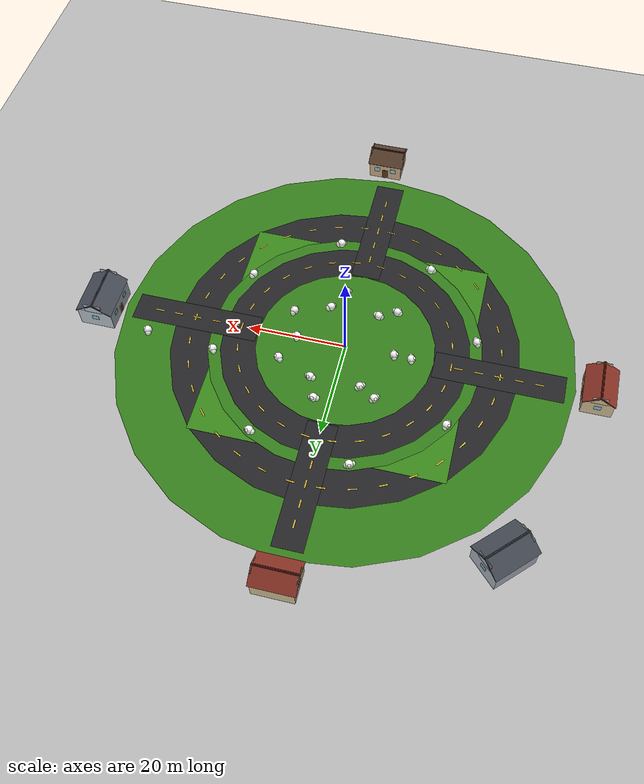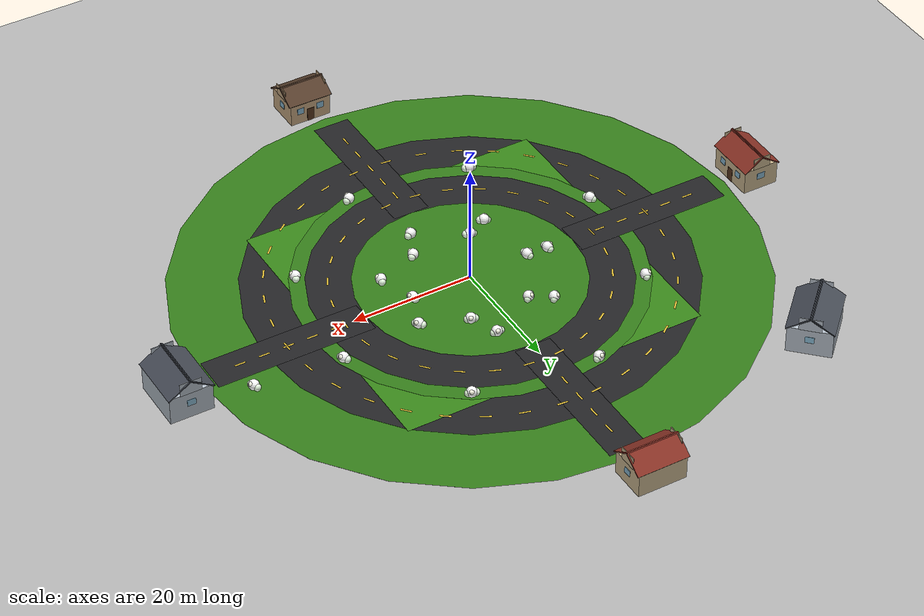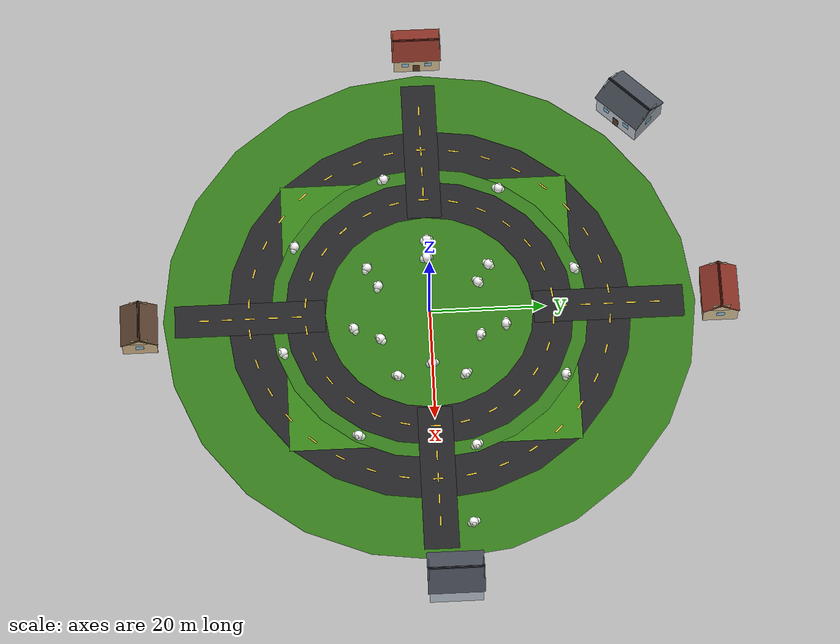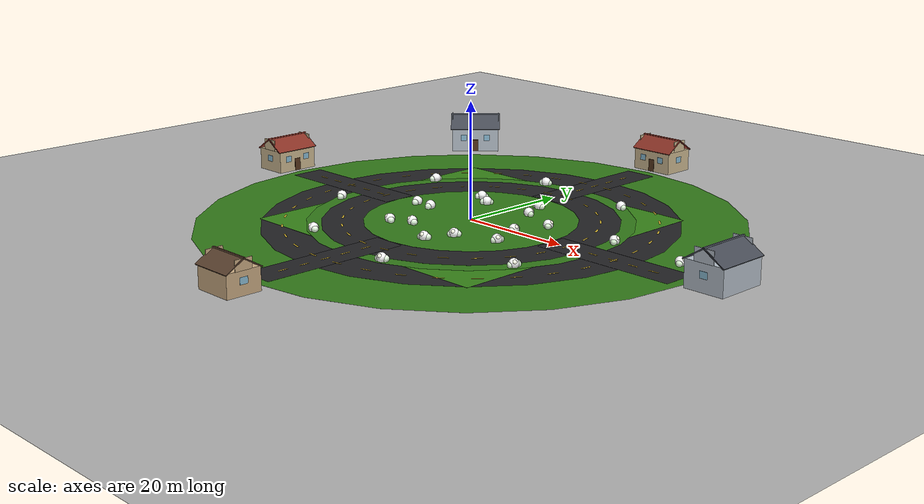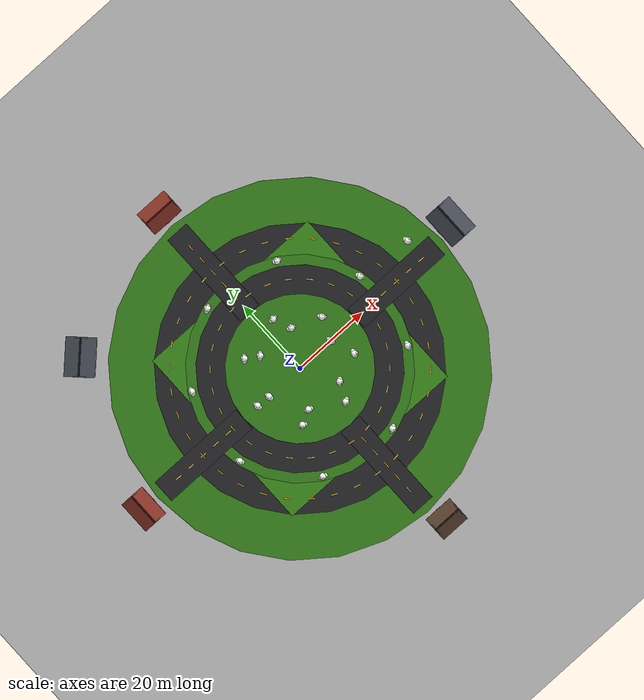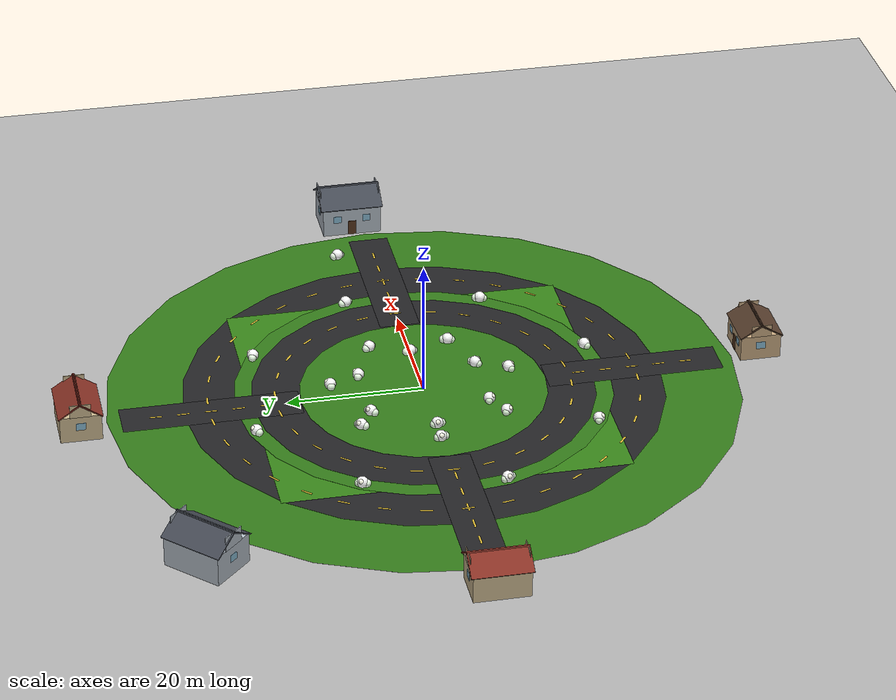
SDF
<sdf version="1.9">
 <world name="vtol_world">
  <physics name="1ms" type="ignore">
   <max_step_size>0.001</max_step_size>
   <real_time_factor>1.0</real_time_factor>
  </physics>
  <plugin filename="gz-sim-physics-system" name="gz::sim::systems::Physics"/>
  <plugin filename="gz-sim-user-commands-system" name="gz::sim::systems::UserCommands"/>
  <plugin filename="gz-sim-scene-broadcaster-system" name="gz::sim::systems::SceneBroadcaster"/>
  <plugin filename="gz-sim-sensors-system" name="gz::sim::systems::Sensors">
   <render_engine>ogre2</render_engine>
  </plugin>
  <scene><ambient>0.6 0.6 0.6 1</ambient><background>0.75 0.82 0.9 1</background><shadows>true</shadows></scene>
  <light name="sun" type="directional">
   <pose>0 0 10 0 0 0</pose>
   <diffuse>0.9 0.9 0.9 1</diffuse>
   <specular>0.2 0.2 0.2 1</specular>
   <direction>-0.5 0.1 -0.9</direction>
  </light>
  <light name="fill" type="directional">
   <cast_shadows>false</cast_shadows>
   <pose>0 0 10 0 0 0</pose>
   <diffuse>0.45 0.45 0.45 1</diffuse>
   <specular>0.05 0.05 0.05 1</specular>
   <direction>0.6 -0.2 -0.6</direction>
  </light>
  <model name="ground_plane">
   <static>true</static>
   <link name="link">
    <collision name="collision">
     <geometry><plane><normal>0 0 1</normal><size>200 200</size></plane></geometry>
    </collision>
    <visual name="visual">
     <geometry><plane><normal>0 0 1</normal><size>200 200</size></plane></geometry>
     <material>
      <ambient>0.7 0.7 0.7 1</ambient>
      <diffuse>0.7 0.7 0.7 1</diffuse>
      <specular>0.4 0.4 0.4 1</specular>
     </material>
    </visual>
   </link>
  </model>
  <model name="grass">
   <static>true</static>
   <link name="link">
    <visual name="visual">
     <pose>0 0 0.002 0 0 0</pose>
     <geometry><plane><normal>0 0 1</normal><size>50 50</size></plane></geometry>
     <material>
      <ambient>0.18 0.42 0.08 1</ambient>
      <diffuse>0.22 0.52 0.10 1</diffuse>
      <specular>0.05 0.12 0.03 1</specular>
     </material>
    </visual>
   </link>
  </model>
  <model name="road_network">
   <static>true</static>
   <link name="link">
    <visual name="grass_base">
     <pose>0 0 0.01 0 0 0</pose>
     <geometry><cylinder><radius>46.0</radius><length>0.002</length></cylinder></geometry>
     <material>
      <ambient>0.2 0.48 0.1 1</ambient>
      <diffuse>0.2 0.48 0.1 1</diffuse>
      <specular>0.05 0.05 0.05 1</specular>
     </material>
    </visual>
    <visual name="outer_asphalt">
     <pose>0 0 0.02 0 0 0</pose>
     <geometry><cylinder><radius>35.0</radius><length>0.002</length></cylinder></geometry>
     <material>
      <ambient>0.14 0.14 0.15 1</ambient>
      <diffuse>0.14 0.14 0.15 1</diffuse>
      <specular>0.05 0.05 0.05 1</specular>
     </material>
    </visual>
    <visual name="median_grass">
     <pose>0 0 0.03 0 0 0</pose>
     <geometry><cylinder><radius>27.5</radius><length>0.002</length></cylinder></geometry>
     <material>
      <ambient>0.2 0.48 0.1 1</ambient>
      <diffuse>0.2 0.48 0.1 1</diffuse>
      <specular>0.05 0.05 0.05 1</specular>
     </material>
    </visual>
    <visual name="inner_asphalt">
     <pose>0 0 0.04 0 0 0</pose>
     <geometry><cylinder><radius>25.0</radius><length>0.002</length></cylinder></geometry>
     <material>
      <ambient>0.14 0.14 0.15 1</ambient>
      <diffuse>0.14 0.14 0.15 1</diffuse>
      <specular>0.05 0.05 0.05 1</specular>
     </material>
    </visual>
    <visual name="center_grass">
     <pose>0 0 0.05 0 0 0</pose>
     <geometry><cylinder><radius>18.0</radius><length>0.002</length></cylinder></geometry>
     <material>
      <ambient>0.2 0.48 0.1 1</ambient>
      <diffuse>0.2 0.48 0.1 1</diffuse>
      <specular>0.05 0.05 0.05 1</specular>
     </material>
    </visual>
    <visual name="radial_e">
     <pose>31.000 0.000 0.055 0 0 0.0000</pose>
     <geometry><plane><normal>0 0 1</normal><size>26.0 6.0</size></plane></geometry>
     <material>
      <ambient>0.14 0.14 0.15 1</ambient>
      <diffuse>0.14 0.14 0.15 1</diffuse>
      <specular>0.05 0.05 0.05 1</specular>
     </material>
    </visual>
    <visual name="radial_n">
     <pose>0.000 31.000 0.055 0 0 0.0000</pose>
     <geometry><plane><normal>0 0 1</normal><size>6.0 26.0</size></plane></geometry>
     <material>
      <ambient>0.14 0.14 0.15 1</ambient>
      <diffuse>0.14 0.14 0.15 1</diffuse>
      <specular>0.05 0.05 0.05 1</specular>
     </material>
    </visual>
    <visual name="radial_w">
     <pose>-31.000 0.000 0.055 0 0 0.0000</pose>
     <geometry><plane><normal>0 0 1</normal><size>26.0 6.0</size></plane></geometry>
     <material>
      <ambient>0.14 0.14 0.15 1</ambient>
      <diffuse>0.14 0.14 0.15 1</diffuse>
      <specular>0.05 0.05 0.05 1</specular>
     </material>
    </visual>
    <visual name="radial_s">
     <pose>-0.000 -31.000 0.055 0 0 0.0000</pose>
     <geometry><plane><normal>0 0 1</normal><size>6.0 26.0</size></plane></geometry>
     <material>
      <ambient>0.14 0.14 0.15 1</ambient>
      <diffuse>0.14 0.14 0.15 1</diffuse>
      <specular>0.05 0.05 0.05 1</specular>
     </material>
    </visual>
    <visual name="din_0">
     <pose>21.500 0.000 0.06 0 0 1.5708</pose>
     <geometry><plane><normal>0 0 1</normal><size>1.8 0.3</size></plane></geometry>
     <material>
      <ambient>0.85 0.72 0.2 1</ambient>
      <diffuse>0.85 0.72 0.2 1</diffuse>
      <specular>0.05 0.05 0.05 1</specular>
     </material>
    </visual>
    <visual name="din_1">
     <pose>20.875 5.145 0.06 0 0 1.8125</pose>
     <geometry><plane><normal>0 0 1</normal><size>1.8 0.3</size></plane></geometry>
     <material>
      <ambient>0.85 0.72 0.2 1</ambient>
      <diffuse>0.85 0.72 0.2 1</diffuse>
      <specular>0.05 0.05 0.05 1</specular>
     </material>
    </visual>
    <visual name="din_2">
     <pose>19.037 9.992 0.06 0 0 2.0541</pose>
     <geometry><plane><normal>0 0 1</normal><size>1.8 0.3</size></plane></geometry>
     <material>
      <ambient>0.85 0.72 0.2 1</ambient>
      <diffuse>0.85 0.72 0.2 1</diffuse>
      <specular>0.05 0.05 0.05 1</specular>
     </material>
    </visual>
    <visual name="din_3">
     <pose>16.093 14.257 0.06 0 0 2.2958</pose>
     <geometry><plane><normal>0 0 1</normal><size>1.8 0.3</size></plane></geometry>
     <material>
      <ambient>0.85 0.72 0.2 1</ambient>
      <diffuse>0.85 0.72 0.2 1</diffuse>
      <specular>0.05 0.05 0.05 1</specular>
     </material>
    </visual>
    <visual name="din_4">
     <pose>12.213 17.694 0.06 0 0 2.5374</pose>
     <geometry><plane><normal>0 0 1</normal><size>1.8 0.3</size></plane></geometry>
     <material>
      <ambient>0.85 0.72 0.2 1</ambient>
      <diffuse>0.85 0.72 0.2 1</diffuse>
      <specular>0.05 0.05 0.05 1</specular>
     </material>
    </visual>
    <visual name="din_5">
     <pose>7.624 20.103 0.06 0 0 2.7791</pose>
     <geometry><plane><normal>0 0 1</normal><size>1.8 0.3</size></plane></geometry>
     <material>
      <ambient>0.85 0.72 0.2 1</ambient>
      <diffuse>0.85 0.72 0.2 1</diffuse>
      <specular>0.05 0.05 0.05 1</specular>
     </material>
    </visual>
    <visual name="din_6">
     <pose>2.592 21.343 0.06 0 0 3.0208</pose>
     <geometry><plane><normal>0 0 1</normal><size>1.8 0.3</size></plane></geometry>
     <material>
      <ambient>0.85 0.72 0.2 1</ambient>
      <diffuse>0.85 0.72 0.2 1</diffuse>
      <specular>0.05 0.05 0.05 1</specular>
     </material>
    </visual>
    <visual name="din_7">
     <pose>-2.592 21.343 0.06 0 0 3.2624</pose>
     <geometry><plane><normal>0 0 1</normal><size>1.8 0.3</size></plane></geometry>
     <material>
      <ambient>0.85 0.72 0.2 1</ambient>
      <diffuse>0.85 0.72 0.2 1</diffuse>
      <specular>0.05 0.05 0.05 1</specular>
     </material>
    </visual>
    <visual name="din_8">
     <pose>-7.624 20.103 0.06 0 0 3.5041</pose>
     <geometry><plane><normal>0 0 1</normal><size>1.8 0.3</size></plane></geometry>
     <material>
      <ambient>0.85 0.72 0.2 1</ambient>
      <diffuse>0.85 0.72 0.2 1</diffuse>
      <specular>0.05 0.05 0.05 1</specular>
     </material>
    </visual>
    <visual name="din_9">
     <pose>-12.213 17.694 0.06 0 0 3.7457</pose>
     <geometry><plane><normal>0 0 1</normal><size>1.8 0.3</size></plane></geometry>
     <material>
      <ambient>0.85 0.72 0.2 1</ambient>
      <diffuse>0.85 0.72 0.2 1</diffuse>
      <specular>0.05 0.05 0.05 1</specular>
     </material>
    </visual>
    <visual name="din_10">
     <pose>-16.093 14.257 0.06 0 0 3.9874</pose>
     <geometry><plane><normal>0 0 1</normal><size>1.8 0.3</size></plane></geometry>
     <material>
      <ambient>0.85 0.72 0.2 1</ambient>
      <diffuse>0.85 0.72 0.2 1</diffuse>
      <specular>0.05 0.05 0.05 1</specular>
     </material>
    </visual>
    <visual name="din_11">
     <pose>-19.037 9.992 0.06 0 0 4.2291</pose>
     <geometry><plane><normal>0 0 1</normal><size>1.8 0.3</size></plane></geometry>
     <material>
      <ambient>0.85 0.72 0.2 1</ambient>
      <diffuse>0.85 0.72 0.2 1</diffuse>
      <specular>0.05 0.05 0.05 1</specular>
     </material>
    </visual>
    <visual name="din_12">
     <pose>-20.875 5.145 0.06 0 0 4.4707</pose>
     <geometry><plane><normal>0 0 1</normal><size>1.8 0.3</size></plane></geometry>
     <material>
      <ambient>0.85 0.72 0.2 1</ambient>
      <diffuse>0.85 0.72 0.2 1</diffuse>
      <specular>0.05 0.05 0.05 1</specular>
     </material>
    </visual>
    <visual name="din_13">
     <pose>-21.500 -0.000 0.06 0 0 4.7124</pose>
     <geometry><plane><normal>0 0 1</normal><size>1.8 0.3</size></plane></geometry>
     <material>
      <ambient>0.85 0.72 0.2 1</ambient>
      <diffuse>0.85 0.72 0.2 1</diffuse>
      <specular>0.05 0.05 0.05 1</specular>
     </material>
    </visual>
    <visual name="din_14">
     <pose>-20.875 -5.145 0.06 0 0 4.9540</pose>
     <geometry><plane><normal>0 0 1</normal><size>1.8 0.3</size></plane></geometry>
     <material>
      <ambient>0.85 0.72 0.2 1</ambient>
      <diffuse>0.85 0.72 0.2 1</diffuse>
      <specular>0.05 0.05 0.05 1</specular>
     </material>
    </visual>
    <visual name="din_15">
     <pose>-19.037 -9.992 0.06 0 0 5.1957</pose>
     <geometry><plane><normal>0 0 1</normal><size>1.8 0.3</size></plane></geometry>
     <material>
      <ambient>0.85 0.72 0.2 1</ambient>
      <diffuse>0.85 0.72 0.2 1</diffuse>
      <specular>0.05 0.05 0.05 1</specular>
     </material>
    </visual>
    <visual name="din_16">
     <pose>-16.093 -14.257 0.06 0 0 5.4374</pose>
     <geometry><plane><normal>0 0 1</normal><size>1.8 0.3</size></plane></geometry>
     <material>
      <ambient>0.85 0.72 0.2 1</ambient>
      <diffuse>0.85 0.72 0.2 1</diffuse>
      <specular>0.05 0.05 0.05 1</specular>
     </material>
    </visual>
    <visual name="din_17">
     <pose>-12.213 -17.694 0.06 0 0 5.6790</pose>
     <geometry><plane><normal>0 0 1</normal><size>1.8 0.3</size></plane></geometry>
     <material>
      <ambient>0.85 0.72 0.2 1</ambient>
      <diffuse>0.85 0.72 0.2 1</diffuse>
      <specular>0.05 0.05 0.05 1</specular>
     </material>
    </visual>
    <visual name="din_18">
     <pose>-7.624 -20.103 0.06 0 0 5.9207</pose>
     <geometry><plane><normal>0 0 1</normal><size>1.8 0.3</size></plane></geometry>
     <material>
      <ambient>0.85 0.72 0.2 1</ambient>
      <diffuse>0.85 0.72 0.2 1</diffuse>
      <specular>0.05 0.05 0.05 1</specular>
     </material>
    </visual>
    <visual name="din_19">
     <pose>-2.592 -21.343 0.06 0 0 6.1624</pose>
     <geometry><plane><normal>0 0 1</normal><size>1.8 0.3</size></plane></geometry>
     <material>
      <ambient>0.85 0.72 0.2 1</ambient>
      <diffuse>0.85 0.72 0.2 1</diffuse>
      <specular>0.05 0.05 0.05 1</specular>
     </material>
    </visual>
    <visual name="din_20">
     <pose>2.592 -21.343 0.06 0 0 6.4040</pose>
     <geometry><plane><normal>0 0 1</normal><size>1.8 0.3</size></plane></geometry>
     <material>
      <ambient>0.85 0.72 0.2 1</ambient>
      <diffuse>0.85 0.72 0.2 1</diffuse>
      <specular>0.05 0.05 0.05 1</specular>
     </material>
    </visual>
    <visual name="din_21">
     <pose>7.624 -20.103 0.06 0 0 6.6457</pose>
     <geometry><plane><normal>0 0 1</normal><size>1.8 0.3</size></plane></geometry>
     <material>
      <ambient>0.85 0.72 0.2 1</ambient>
      <diffuse>0.85 0.72 0.2 1</diffuse>
      <specular>0.05 0.05 0.05 1</specular>
     </material>
    </visual>
    <visual name="din_22">
     <pose>12.213 -17.694 0.06 0 0 6.8873</pose>
     <geometry><plane><normal>0 0 1</normal><size>1.8 0.3</size></plane></geometry>
     <material>
      <ambient>0.85 0.72 0.2 1</ambient>
      <diffuse>0.85 0.72 0.2 1</diffuse>
      <specular>0.05 0.05 0.05 1</specular>
     </material>
    </visual>
    <visual name="din_23">
     <pose>16.093 -14.257 0.06 0 0 7.1290</pose>
     <geometry><plane><normal>0 0 1</normal><size>1.8 0.3</size></plane></geometry>
     <material>
      <ambient>0.85 0.72 0.2 1</ambient>
      <diffuse>0.85 0.72 0.2 1</diffuse>
      <specular>0.05 0.05 0.05 1</specular>
     </material>
    </visual>
    <visual name="din_24">
     <pose>19.037 -9.992 0.06 0 0 7.3707</pose>
     <geometry><plane><normal>0 0 1</normal><size>1.8 0.3</size></plane></geometry>
     <material>
      <ambient>0.85 0.72 0.2 1</ambient>
      <diffuse>0.85 0.72 0.2 1</diffuse>
      <specular>0.05 0.05 0.05 1</specular>
     </material>
    </visual>
    <visual name="din_25">
     <pose>20.875 -5.145 0.06 0 0 7.6123</pose>
     <geometry><plane><normal>0 0 1</normal><size>1.8 0.3</size></plane></geometry>
     <material>
      <ambient>0.85 0.72 0.2 1</ambient>
      <diffuse>0.85 0.72 0.2 1</diffuse>
      <specular>0.05 0.05 0.05 1</specular>
     </material>
    </visual>
    <visual name="dout_0">
     <pose>31.250 0.000 0.06 0 0 1.5708</pose>
     <geometry><plane><normal>0 0 1</normal><size>1.8 0.3</size></plane></geometry>
     <material>
      <ambient>0.85 0.72 0.2 1</ambient>
      <diffuse>0.85 0.72 0.2 1</diffuse>
      <specular>0.05 0.05 0.05 1</specular>
     </material>
    </visual>
    <visual name="dout_1">
     <pose>30.718 5.742 0.06 0 0 1.7556</pose>
     <geometry><plane><normal>0 0 1</normal><size>1.8 0.3</size></plane></geometry>
     <material>
      <ambient>0.85 0.72 0.2 1</ambient>
      <diffuse>0.85 0.72 0.2 1</diffuse>
      <specular>0.05 0.05 0.05 1</specular>
     </material>
    </visual>
    <visual name="dout_2">
     <pose>29.140 11.289 0.06 0 0 1.9404</pose>
     <geometry><plane><normal>0 0 1</normal><size>1.8 0.3</size></plane></geometry>
     <material>
      <ambient>0.85 0.72 0.2 1</ambient>
      <diffuse>0.85 0.72 0.2 1</diffuse>
      <specular>0.05 0.05 0.05 1</specular>
     </material>
    </visual>
    <visual name="dout_3">
     <pose>26.569 16.451 0.06 0 0 2.1252</pose>
     <geometry><plane><normal>0 0 1</normal><size>1.8 0.3</size></plane></geometry>
     <material>
      <ambient>0.85 0.72 0.2 1</ambient>
      <diffuse>0.85 0.72 0.2 1</diffuse>
      <specular>0.05 0.05 0.05 1</specular>
     </material>
    </visual>
    <visual name="dout_4">
     <pose>23.094 21.053 0.06 0 0 2.3100</pose>
     <geometry><plane><normal>0 0 1</normal><size>1.8 0.3</size></plane></geometry>
     <material>
      <ambient>0.85 0.72 0.2 1</ambient>
      <diffuse>0.85 0.72 0.2 1</diffuse>
      <specular>0.05 0.05 0.05 1</specular>
     </material>
    </visual>
    <visual name="dout_5">
     <pose>18.832 24.938 0.06 0 0 2.4948</pose>
     <geometry><plane><normal>0 0 1</normal><size>1.8 0.3</size></plane></geometry>
     <material>
      <ambient>0.85 0.72 0.2 1</ambient>
      <diffuse>0.85 0.72 0.2 1</diffuse>
      <specular>0.05 0.05 0.05 1</specular>
     </material>
    </visual>
    <visual name="dout_6">
     <pose>13.929 27.974 0.06 0 0 2.6796</pose>
     <geometry><plane><normal>0 0 1</normal><size>1.8 0.3</size></plane></geometry>
     <material>
      <ambient>0.85 0.72 0.2 1</ambient>
      <diffuse>0.85 0.72 0.2 1</diffuse>
      <specular>0.05 0.05 0.05 1</specular>
     </material>
    </visual>
    <visual name="dout_7">
     <pose>8.552 30.057 0.06 0 0 2.8644</pose>
     <geometry><plane><normal>0 0 1</normal><size>1.8 0.3</size></plane></geometry>
     <material>
      <ambient>0.85 0.72 0.2 1</ambient>
      <diffuse>0.85 0.72 0.2 1</diffuse>
      <specular>0.05 0.05 0.05 1</specular>
     </material>
    </visual>
    <visual name="dout_8">
     <pose>2.883 31.117 0.06 0 0 3.0492</pose>
     <geometry><plane><normal>0 0 1</normal><size>1.8 0.3</size></plane></geometry>
     <material>
      <ambient>0.85 0.72 0.2 1</ambient>
      <diffuse>0.85 0.72 0.2 1</diffuse>
      <specular>0.05 0.05 0.05 1</specular>
     </material>
    </visual>
    <visual name="dout_9">
     <pose>-2.883 31.117 0.06 0 0 3.2340</pose>
     <geometry><plane><normal>0 0 1</normal><size>1.8 0.3</size></plane></geometry>
     <material>
      <ambient>0.85 0.72 0.2 1</ambient>
      <diffuse>0.85 0.72 0.2 1</diffuse>
      <specular>0.05 0.05 0.05 1</specular>
     </material>
    </visual>
    <visual name="dout_10">
     <pose>-8.552 30.057 0.06 0 0 3.4188</pose>
     <geometry><plane><normal>0 0 1</normal><size>1.8 0.3</size></plane></geometry>
     <material>
      <ambient>0.85 0.72 0.2 1</ambient>
      <diffuse>0.85 0.72 0.2 1</diffuse>
      <specular>0.05 0.05 0.05 1</specular>
     </material>
    </visual>
    <visual name="dout_11">
     <pose>-13.929 27.974 0.06 0 0 3.6036</pose>
     <geometry><plane><normal>0 0 1</normal><size>1.8 0.3</size></plane></geometry>
     <material>
      <ambient>0.85 0.72 0.2 1</ambient>
      <diffuse>0.85 0.72 0.2 1</diffuse>
      <specular>0.05 0.05 0.05 1</specular>
     </material>
    </visual>
    <visual name="dout_12">
     <pose>-18.832 24.938 0.06 0 0 3.7884</pose>
     <geometry><plane><normal>0 0 1</normal><size>1.8 0.3</size></plane></geometry>
     <material>
      <ambient>0.85 0.72 0.2 1</ambient>
      <diffuse>0.85 0.72 0.2 1</diffuse>
      <specular>0.05 0.05 0.05 1</specular>
     </material>
    </visual>
    <visual name="dout_13">
     <pose>-23.094 21.053 0.06 0 0 3.9732</pose>
     <geometry><plane><normal>0 0 1</normal><size>1.8 0.3</size></plane></geometry>
     <material>
      <ambient>0.85 0.72 0.2 1</ambient>
      <diffuse>0.85 0.72 0.2 1</diffuse>
      <specular>0.05 0.05 0.05 1</specular>
     </material>
    </visual>
    <visual name="dout_14">
     <pose>-26.569 16.451 0.06 0 0 4.1580</pose>
     <geometry><plane><normal>0 0 1</normal><size>1.8 0.3</size></plane></geometry>
     <material>
      <ambient>0.85 0.72 0.2 1</ambient>
      <diffuse>0.85 0.72 0.2 1</diffuse>
      <specular>0.05 0.05 0.05 1</specular>
     </material>
    </visual>
    <visual name="dout_15">
     <pose>-29.140 11.289 0.06 0 0 4.3428</pose>
     <geometry><plane><normal>0 0 1</normal><size>1.8 0.3</size></plane></geometry>
     <material>
      <ambient>0.85 0.72 0.2 1</ambient>
      <diffuse>0.85 0.72 0.2 1</diffuse>
      <specular>0.05 0.05 0.05 1</specular>
     </material>
    </visual>
    <visual name="dout_16">
     <pose>-30.718 5.742 0.06 0 0 4.5276</pose>
     <geometry><plane><normal>0 0 1</normal><size>1.8 0.3</size></plane></geometry>
     <material>
      <ambient>0.85 0.72 0.2 1</ambient>
      <diffuse>0.85 0.72 0.2 1</diffuse>
      <specular>0.05 0.05 0.05 1</specular>
     </material>
    </visual>
    <visual name="dout_17">
     <pose>-31.250 0.000 0.06 0 0 4.7124</pose>
     <geometry><plane><normal>0 0 1</normal><size>1.8 0.3</size></plane></geometry>
     <material>
      <ambient>0.85 0.72 0.2 1</ambient>
      <diffuse>0.85 0.72 0.2 1</diffuse>
      <specular>0.05 0.05 0.05 1</specular>
     </material>
    </visual>
    <visual name="dout_18">
     <pose>-30.718 -5.742 0.06 0 0 4.8972</pose>
     <geometry><plane><normal>0 0 1</normal><size>1.8 0.3</size></plane></geometry>
     <material>
      <ambient>0.85 0.72 0.2 1</ambient>
      <diffuse>0.85 0.72 0.2 1</diffuse>
      <specular>0.05 0.05 0.05 1</specular>
     </material>
    </visual>
    <visual name="dout_19">
     <pose>-29.140 -11.289 0.06 0 0 5.0820</pose>
     <geometry><plane><normal>0 0 1</normal><size>1.8 0.3</size></plane></geometry>
     <material>
      <ambient>0.85 0.72 0.2 1</ambient>
      <diffuse>0.85 0.72 0.2 1</diffuse>
      <specular>0.05 0.05 0.05 1</specular>
     </material>
    </visual>
    <visual name="dout_20">
     <pose>-26.569 -16.451 0.06 0 0 5.2668</pose>
     <geometry><plane><normal>0 0 1</normal><size>1.8 0.3</size></plane></geometry>
     <material>
      <ambient>0.85 0.72 0.2 1</ambient>
      <diffuse>0.85 0.72 0.2 1</diffuse>
      <specular>0.05 0.05 0.05 1</specular>
     </material>
    </visual>
    <visual name="dout_21">
     <pose>-23.094 -21.053 0.06 0 0 5.4516</pose>
     <geometry><plane><normal>0 0 1</normal><size>1.8 0.3</size></plane></geometry>
     <material>
      <ambient>0.85 0.72 0.2 1</ambient>
      <diffuse>0.85 0.72 0.2 1</diffuse>
      <specular>0.05 0.05 0.05 1</specular>
     </material>
    </visual>
    <visual name="dout_22">
     <pose>-18.832 -24.938 0.06 0 0 5.6364</pose>
     <geometry><plane><normal>0 0 1</normal><size>1.8 0.3</size></plane></geometry>
     <material>
      <ambient>0.85 0.72 0.2 1</ambient>
      <diffuse>0.85 0.72 0.2 1</diffuse>
      <specular>0.05 0.05 0.05 1</specular>
     </material>
    </visual>
    <visual name="dout_23">
     <pose>-13.929 -27.974 0.06 0 0 5.8212</pose>
     <geometry><plane><normal>0 0 1</normal><size>1.8 0.3</size></plane></geometry>
     <material>
      <ambient>0.85 0.72 0.2 1</ambient>
      <diffuse>0.85 0.72 0.2 1</diffuse>
      <specular>0.05 0.05 0.05 1</specular>
     </material>
    </visual>
    <visual name="dout_24">
     <pose>-8.552 -30.057 0.06 0 0 6.0060</pose>
     <geometry><plane><normal>0 0 1</normal><size>1.8 0.3</size></plane></geometry>
     <material>
      <ambient>0.85 0.72 0.2 1</ambient>
      <diffuse>0.85 0.72 0.2 1</diffuse>
      <specular>0.05 0.05 0.05 1</specular>
     </material>
    </visual>
    <visual name="dout_25">
     <pose>-2.883 -31.117 0.06 0 0 6.1908</pose>
     <geometry><plane><normal>0 0 1</normal><size>1.8 0.3</size></plane></geometry>
     <material>
      <ambient>0.85 0.72 0.2 1</ambient>
      <diffuse>0.85 0.72 0.2 1</diffuse>
      <specular>0.05 0.05 0.05 1</specular>
     </material>
    </visual>
    <visual name="dout_26">
     <pose>2.883 -31.117 0.06 0 0 6.3756</pose>
     <geometry><plane><normal>0 0 1</normal><size>1.8 0.3</size></plane></geometry>
     <material>
      <ambient>0.85 0.72 0.2 1</ambient>
      <diffuse>0.85 0.72 0.2 1</diffuse>
      <specular>0.05 0.05 0.05 1</specular>
     </material>
    </visual>
    <visual name="dout_27">
     <pose>8.552 -30.057 0.06 0 0 6.5604</pose>
     <geometry><plane><normal>0 0 1</normal><size>1.8 0.3</size></plane></geometry>
     <material>
      <ambient>0.85 0.72 0.2 1</ambient>
      <diffuse>0.85 0.72 0.2 1</diffuse>
      <specular>0.05 0.05 0.05 1</specular>
     </material>
    </visual>
    <visual name="dout_28">
     <pose>13.929 -27.974 0.06 0 0 6.7452</pose>
     <geometry><plane><normal>0 0 1</normal><size>1.8 0.3</size></plane></geometry>
     <material>
      <ambient>0.85 0.72 0.2 1</ambient>
      <diffuse>0.85 0.72 0.2 1</diffuse>
      <specular>0.05 0.05 0.05 1</specular>
     </material>
    </visual>
    <visual name="dout_29">
     <pose>18.832 -24.938 0.06 0 0 6.9300</pose>
     <geometry><plane><normal>0 0 1</normal><size>1.8 0.3</size></plane></geometry>
     <material>
      <ambient>0.85 0.72 0.2 1</ambient>
      <diffuse>0.85 0.72 0.2 1</diffuse>
      <specular>0.05 0.05 0.05 1</specular>
     </material>
    </visual>
    <visual name="dout_30">
     <pose>23.094 -21.053 0.06 0 0 7.1148</pose>
     <geometry><plane><normal>0 0 1</normal><size>1.8 0.3</size></plane></geometry>
     <material>
      <ambient>0.85 0.72 0.2 1</ambient>
      <diffuse>0.85 0.72 0.2 1</diffuse>
      <specular>0.05 0.05 0.05 1</specular>
     </material>
    </visual>
    <visual name="dout_31">
     <pose>26.569 -16.451 0.06 0 0 7.2996</pose>
     <geometry><plane><normal>0 0 1</normal><size>1.8 0.3</size></plane></geometry>
     <material>
      <ambient>0.85 0.72 0.2 1</ambient>
      <diffuse>0.85 0.72 0.2 1</diffuse>
      <specular>0.05 0.05 0.05 1</specular>
     </material>
    </visual>
    <visual name="dout_32">
     <pose>29.140 -11.289 0.06 0 0 7.4844</pose>
     <geometry><plane><normal>0 0 1</normal><size>1.8 0.3</size></plane></geometry>
     <material>
      <ambient>0.85 0.72 0.2 1</ambient>
      <diffuse>0.85 0.72 0.2 1</diffuse>
      <specular>0.05 0.05 0.05 1</specular>
     </material>
    </visual>
    <visual name="dout_33">
     <pose>30.718 -5.742 0.06 0 0 7.6692</pose>
     <geometry><plane><normal>0 0 1</normal><size>1.8 0.3</size></plane></geometry>
     <material>
      <ambient>0.85 0.72 0.2 1</ambient>
      <diffuse>0.85 0.72 0.2 1</diffuse>
      <specular>0.05 0.05 0.05 1</specular>
     </material>
    </visual>
    <visual name="drad_1">
     <pose>23.000 0.000 0.06 0 0 0.0000</pose>
     <geometry><plane><normal>0 0 1</normal><size>1.8 0.3</size></plane></geometry>
     <material>
      <ambient>0.85 0.72 0.2 1</ambient>
      <diffuse>0.85 0.72 0.2 1</diffuse>
      <specular>0.05 0.05 0.05 1</specular>
     </material>
    </visual>
    <visual name="drad_2">
     <pose>27.000 0.000 0.06 0 0 0.0000</pose>
     <geometry><plane><normal>0 0 1</normal><size>1.8 0.3</size></plane></geometry>
     <material>
      <ambient>0.85 0.72 0.2 1</ambient>
      <diffuse>0.85 0.72 0.2 1</diffuse>
      <specular>0.05 0.05 0.05 1</specular>
     </material>
    </visual>
    <visual name="drad_3">
     <pose>31.000 0.000 0.06 0 0 0.0000</pose>
     <geometry><plane><normal>0 0 1</normal><size>1.8 0.3</size></plane></geometry>
     <material>
      <ambient>0.85 0.72 0.2 1</ambient>
      <diffuse>0.85 0.72 0.2 1</diffuse>
      <specular>0.05 0.05 0.05 1</specular>
     </material>
    </visual>
    <visual name="drad_4">
     <pose>35.000 0.000 0.06 0 0 0.0000</pose>
     <geometry><plane><normal>0 0 1</normal><size>1.8 0.3</size></plane></geometry>
     <material>
      <ambient>0.85 0.72 0.2 1</ambient>
      <diffuse>0.85 0.72 0.2 1</diffuse>
      <specular>0.05 0.05 0.05 1</specular>
     </material>
    </visual>
    <visual name="drad_5">
     <pose>39.000 0.000 0.06 0 0 0.0000</pose>
     <geometry><plane><normal>0 0 1</normal><size>1.8 0.3</size></plane></geometry>
     <material>
      <ambient>0.85 0.72 0.2 1</ambient>
      <diffuse>0.85 0.72 0.2 1</diffuse>
      <specular>0.05 0.05 0.05 1</specular>
     </material>
    </visual>
    <visual name="drad_6">
     <pose>0.000 23.000 0.06 0 0 0.0000</pose>
     <geometry><plane><normal>0 0 1</normal><size>0.3 1.8</size></plane></geometry>
     <material>
      <ambient>0.85 0.72 0.2 1</ambient>
      <diffuse>0.85 0.72 0.2 1</diffuse>
      <specular>0.05 0.05 0.05 1</specular>
     </material>
    </visual>
    <visual name="drad_7">
     <pose>0.000 27.000 0.06 0 0 0.0000</pose>
     <geometry><plane><normal>0 0 1</normal><size>0.3 1.8</size></plane></geometry>
     <material>
      <ambient>0.85 0.72 0.2 1</ambient>
      <diffuse>0.85 0.72 0.2 1</diffuse>
      <specular>0.05 0.05 0.05 1</specular>
     </material>
    </visual>
    <visual name="drad_8">
     <pose>0.000 31.000 0.06 0 0 0.0000</pose>
     <geometry><plane><normal>0 0 1</normal><size>0.3 1.8</size></plane></geometry>
     <material>
      <ambient>0.85 0.72 0.2 1</ambient>
      <diffuse>0.85 0.72 0.2 1</diffuse>
      <specular>0.05 0.05 0.05 1</specular>
     </material>
    </visual>
    <visual name="drad_9">
     <pose>0.000 35.000 0.06 0 0 0.0000</pose>
     <geometry><plane><normal>0 0 1</normal><size>0.3 1.8</size></plane></geometry>
     <material>
      <ambient>0.85 0.72 0.2 1</ambient>
      <diffuse>0.85 0.72 0.2 1</diffuse>
      <specular>0.05 0.05 0.05 1</specular>
     </material>
    </visual>
    <visual name="drad_10">
     <pose>0.000 39.000 0.06 0 0 0.0000</pose>
     <geometry><plane><normal>0 0 1</normal><size>0.3 1.8</size></plane></geometry>
     <material>
      <ambient>0.85 0.72 0.2 1</ambient>
      <diffuse>0.85 0.72 0.2 1</diffuse>
      <specular>0.05 0.05 0.05 1</specular>
     </material>
    </visual>
    <visual name="drad_11">
     <pose>-23.000 0.000 0.06 0 0 0.0000</pose>
     <geometry><plane><normal>0 0 1</normal><size>1.8 0.3</size></plane></geometry>
     <material>
      <ambient>0.85 0.72 0.2 1</ambient>
      <diffuse>0.85 0.72 0.2 1</diffuse>
      <specular>0.05 0.05 0.05 1</specular>
     </material>
    </visual>
    <visual name="drad_12">
     <pose>-27.000 0.000 0.06 0 0 0.0000</pose>
     <geometry><plane><normal>0 0 1</normal><size>1.8 0.3</size></plane></geometry>
     <material>
      <ambient>0.85 0.72 0.2 1</ambient>
      <diffuse>0.85 0.72 0.2 1</diffuse>
      <specular>0.05 0.05 0.05 1</specular>
     </material>
    </visual>
    <visual name="drad_13">
     <pose>-31.000 0.000 0.06 0 0 0.0000</pose>
     <geometry><plane><normal>0 0 1</normal><size>1.8 0.3</size></plane></geometry>
     <material>
      <ambient>0.85 0.72 0.2 1</ambient>
      <diffuse>0.85 0.72 0.2 1</diffuse>
      <specular>0.05 0.05 0.05 1</specular>
     </material>
    </visual>
    <visual name="drad_14">
     <pose>-35.000 0.000 0.06 0 0 0.0000</pose>
     <geometry><plane><normal>0 0 1</normal><size>1.8 0.3</size></plane></geometry>
     <material>
      <ambient>0.85 0.72 0.2 1</ambient>
      <diffuse>0.85 0.72 0.2 1</diffuse>
      <specular>0.05 0.05 0.05 1</specular>
     </material>
    </visual>
    <visual name="drad_15">
     <pose>-39.000 0.000 0.06 0 0 0.0000</pose>
     <geometry><plane><normal>0 0 1</normal><size>1.8 0.3</size></plane></geometry>
     <material>
      <ambient>0.85 0.72 0.2 1</ambient>
      <diffuse>0.85 0.72 0.2 1</diffuse>
      <specular>0.05 0.05 0.05 1</specular>
     </material>
    </visual>
    <visual name="drad_16">
     <pose>-0.000 -23.000 0.06 0 0 0.0000</pose>
     <geometry><plane><normal>0 0 1</normal><size>0.3 1.8</size></plane></geometry>
     <material>
      <ambient>0.85 0.72 0.2 1</ambient>
      <diffuse>0.85 0.72 0.2 1</diffuse>
      <specular>0.05 0.05 0.05 1</specular>
     </material>
    </visual>
    <visual name="drad_17">
     <pose>-0.000 -27.000 0.06 0 0 0.0000</pose>
     <geometry><plane><normal>0 0 1</normal><size>0.3 1.8</size></plane></geometry>
     <material>
      <ambient>0.85 0.72 0.2 1</ambient>
      <diffuse>0.85 0.72 0.2 1</diffuse>
      <specular>0.05 0.05 0.05 1</specular>
     </material>
    </visual>
    <visual name="drad_18">
     <pose>-0.000 -31.000 0.06 0 0 0.0000</pose>
     <geometry><plane><normal>0 0 1</normal><size>0.3 1.8</size></plane></geometry>
     <material>
      <ambient>0.85 0.72 0.2 1</ambient>
      <diffuse>0.85 0.72 0.2 1</diffuse>
      <specular>0.05 0.05 0.05 1</specular>
     </material>
    </visual>
    <visual name="drad_19">
     <pose>-0.000 -35.000 0.06 0 0 0.0000</pose>
     <geometry><plane><normal>0 0 1</normal><size>0.3 1.8</size></plane></geometry>
     <material>
      <ambient>0.85 0.72 0.2 1</ambient>
      <diffuse>0.85 0.72 0.2 1</diffuse>
      <specular>0.05 0.05 0.05 1</specular>
     </material>
    </visual>
    <visual name="drad_20">
     <pose>-0.000 -39.000 0.06 0 0 0.0000</pose>
     <geometry><plane><normal>0 0 1</normal><size>0.3 1.8</size></plane></geometry>
     <material>
      <ambient>0.85 0.72 0.2 1</ambient>
      <diffuse>0.85 0.72 0.2 1</diffuse>
      <specular>0.05 0.05 0.05 1</specular>
     </material>
    </visual>
   </link>
  </model>
  <include><uri>model://house1</uri><name>house_1</name><pose>0 50 0 0 0 3.1416</pose></include>
  <include><uri>model://house2</uri><name>house_2</name><pose>50 2 0 0 0 1.5708</pose></include>
  <include><uri>model://house3</uri><name>house_3</name><pose>2 -50 0 0 0 0.0</pose></include>
  <include><uri>model://house1</uri><name>house_4</name><pose>-50 0 0 0 0 -1.5708</pose></include>
  <include><uri>model://house2</uri><name>house_5</name><pose>-37 37 0 0 0 -2.356</pose></include>
  <include><uri>model://bush</uri><name>bush_1</name><pose>10.0 0.0 0 0 0 1.3</pose></include>
  <include><uri>model://bush</uri><name>bush_2</name><pose>5.0 8.66 0 0 0 2.347</pose></include>
  <include><uri>model://bush</uri><name>bush_3</name><pose>-5.0 8.66 0 0 0 3.394</pose></include>
  <include><uri>model://bush</uri><name>bush_4</name><pose>-10.0 0.0 0 0 0 4.442</pose></include>
  <include><uri>model://bush</uri><name>bush_5</name><pose>-5.0 -8.66 0 0 0 5.489</pose></include>
  <include><uri>model://bush</uri><name>bush_6</name><pose>5.0 -8.66 0 0 0 0.253</pose></include>
  <include><uri>model://bush</uri><name>bush_7</name><pose>12.24 5.71 0 0 0 1.736</pose></include>
  <include><uri>model://bush</uri><name>bush_8</name><pose>3.17 13.12 0 0 0 2.634</pose></include>
  <include><uri>model://bush</uri><name>bush_9</name><pose>-8.28 10.66 0 0 0 3.532</pose></include>
  <include><uri>model://bush</uri><name>bush_10</name><pose>-13.5 0.17 0 0 0 4.429</pose></include>
  <include><uri>model://bush</uri><name>bush_11</name><pose>-8.55 -10.45 0 0 0 5.327</pose></include>
  <include><uri>model://bush</uri><name>bush_12</name><pose>2.84 -13.2 0 0 0 6.224</pose></include>
  <include><uri>model://bush</uri><name>bush_13</name><pose>12.09 -6.01 0 0 0 0.839</pose></include>
  <include><uri>model://bush</uri><name>bush_14</name><pose>25.5 6.83 0 0 0 1.562</pose></include>
  <include><uri>model://bush</uri><name>bush_15</name><pose>13.2 22.86 0 0 0 2.347</pose></include>
  <include><uri>model://bush</uri><name>bush_16</name><pose>-6.83 25.5 0 0 0 3.133</pose></include>
  <include><uri>model://bush</uri><name>bush_17</name><pose>-22.86 13.2 0 0 0 3.918</pose></include>
  <include><uri>model://bush</uri><name>bush_18</name><pose>-25.5 -6.83 0 0 0 4.703</pose></include>
  <include><uri>model://bush</uri><name>bush_19</name><pose>-13.2 -22.86 0 0 0 5.489</pose></include>
  <include><uri>model://bush</uri><name>bush_20</name><pose>6.83 -25.5 0 0 0 6.274</pose></include>
  <include><uri>model://bush</uri><name>bush_21</name><pose>22.86 -13.2 0 0 0 0.776</pose></include>
  <include><uri>model://bush</uri><name>bush_22</name><pose>39.61 5.57 0 0 0 1.44</pose></include>
 </world>
</sdf>

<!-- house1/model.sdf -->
<sdf version="1.9">
  <model name="house1">
    <static>true</static>
    <link name="link">
      <collision name="collision">
        <pose>0 0 2.00 0 0 0</pose>
        <geometry><box><size>8.0 6.0 6.0</size></box></geometry>
      </collision>
      <visual name="walls">
        <pose>0 0 2.0 0.0 0 0</pose>
        <geometry><box><size>8.0 6.0 4.0</size></box></geometry>
        <material><ambient>0.82 0.74 0.58 1</ambient><diffuse>0.82 0.74 0.58 1</diffuse><specular>0.2 0.2 0.2 1</specular><pbr><metal><roughness>0.9</roughness><metalness>0.0</metalness></metal></pbr></material>
      </visual>
      <visual name="roof_p">
        <pose>0 1.5 5.0 -0.5880026035475675 0 0</pose>
        <geometry><box><size>8.6 4.005551275463989 0.18</size></box></geometry>
        <material><ambient>0.55 0.2 0.15 1</ambient><diffuse>0.55 0.2 0.15 1</diffuse><specular>0.2 0.2 0.2 1</specular><pbr><metal><roughness>0.8</roughness><metalness>0.0</metalness></metal></pbr></material>
      </visual>
      <visual name="roof_n">
        <pose>0 -1.5 5.0 0.5880026035475675 0 0</pose>
        <geometry><box><size>8.6 4.005551275463989 0.18</size></box></geometry>
        <material><ambient>0.55 0.2 0.15 1</ambient><diffuse>0.55 0.2 0.15 1</diffuse><specular>0.2 0.2 0.2 1</specular><pbr><metal><roughness>0.8</roughness><metalness>0.0</metalness></metal></pbr></material>
      </visual>
      <visual name="gable_e">
        <pose>4.05 0 5.0 0.0 0 0</pose>
        <geometry><box><size>0.1 3.0 2.0</size></box></geometry>
        <material><ambient>0.82 0.74 0.58 1</ambient><diffuse>0.82 0.74 0.58 1</diffuse><specular>0.2 0.2 0.2 1</specular><pbr><metal><roughness>0.9</roughness><metalness>0.0</metalness></metal></pbr></material>
      </visual>
      <visual name="gable_w">
        <pose>-4.05 0 5.0 0.0 0 0</pose>
        <geometry><box><size>0.1 3.0 2.0</size></box></geometry>
        <material><ambient>0.82 0.74 0.58 1</ambient><diffuse>0.82 0.74 0.58 1</diffuse><specular>0.2 0.2 0.2 1</specular><pbr><metal><roughness>0.9</roughness><metalness>0.0</metalness></metal></pbr></material>
      </visual>
      <visual name="door">
        <pose>0 3.01 1.15 0.0 0 0</pose>
        <geometry><box><size>1.2 0.08 2.3</size></box></geometry>
        <material><ambient>0.35 0.22 0.12 1</ambient><diffuse>0.35 0.22 0.12 1</diffuse><specular>0.2 0.2 0.2 1</specular><pbr><metal><roughness>0.7</roughness><metalness>0.0</metalness></metal></pbr></material>
      </visual>
      <visual name="win_f1">
        <pose>-2.0 3.01 2.4 0.0 0 0</pose>
        <geometry><box><size>1.2 0.06 1.1</size></box></geometry>
        <material><ambient>0.55 0.75 0.85 1</ambient><diffuse>0.55 0.75 0.85 1</diffuse><specular>0.6 0.6 0.6 1</specular><pbr><metal><roughness>0.25</roughness><metalness>0.0</metalness></metal></pbr></material>
      </visual>
      <visual name="win_f2">
        <pose>2.0 3.01 2.4 0.0 0 0</pose>
        <geometry><box><size>1.2 0.06 1.1</size></box></geometry>
        <material><ambient>0.55 0.75 0.85 1</ambient><diffuse>0.55 0.75 0.85 1</diffuse><specular>0.6 0.6 0.6 1</specular><pbr><metal><roughness>0.25</roughness><metalness>0.0</metalness></metal></pbr></material>
      </visual>
      <visual name="win_e">
        <pose>4.01 0 2.4 0.0 0 0</pose>
        <geometry><box><size>0.06 1.4 1.1</size></box></geometry>
        <material><ambient>0.55 0.75 0.85 1</ambient><diffuse>0.55 0.75 0.85 1</diffuse><specular>0.6 0.6 0.6 1</specular><pbr><metal><roughness>0.25</roughness><metalness>0.0</metalness></metal></pbr></material>
      </visual>
      <visual name="win_w">
        <pose>-4.01 0 2.4 0.0 0 0</pose>
        <geometry><box><size>0.06 1.4 1.1</size></box></geometry>
        <material><ambient>0.55 0.75 0.85 1</ambient><diffuse>0.55 0.75 0.85 1</diffuse><specular>0.6 0.6 0.6 1</specular><pbr><metal><roughness>0.25</roughness><metalness>0.0</metalness></metal></pbr></material>
      </visual>
    </link>
  </model>
</sdf>

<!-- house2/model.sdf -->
<sdf version="1.9">
  <model name="house2">
    <static>true</static>
    <link name="link">
      <collision name="collision">
        <pose>0 0 2.25 0 0 0</pose>
        <geometry><box><size>9.0 7.0 6.7</size></box></geometry>
      </collision>
      <visual name="walls">
        <pose>0 0 2.25 0.0 0 0</pose>
        <geometry><box><size>9.0 7.0 4.5</size></box></geometry>
        <material><ambient>0.72 0.76 0.8 1</ambient><diffuse>0.72 0.76 0.8 1</diffuse><specular>0.2 0.2 0.2 1</specular><pbr><metal><roughness>0.9</roughness><metalness>0.0</metalness></metal></pbr></material>
      </visual>
      <visual name="roof_p">
        <pose>0 1.75 5.6 -0.5611634122883522 0 0</pose>
        <geometry><box><size>9.6 4.534005321718878 0.18</size></box></geometry>
        <material><ambient>0.28 0.3 0.34 1</ambient><diffuse>0.28 0.3 0.34 1</diffuse><specular>0.2 0.2 0.2 1</specular><pbr><metal><roughness>0.8</roughness><metalness>0.0</metalness></metal></pbr></material>
      </visual>
      <visual name="roof_n">
        <pose>0 -1.75 5.6 0.5611634122883522 0 0</pose>
        <geometry><box><size>9.6 4.534005321718878 0.18</size></box></geometry>
        <material><ambient>0.28 0.3 0.34 1</ambient><diffuse>0.28 0.3 0.34 1</diffuse><specular>0.2 0.2 0.2 1</specular><pbr><metal><roughness>0.8</roughness><metalness>0.0</metalness></metal></pbr></material>
      </visual>
      <visual name="gable_e">
        <pose>4.55 0 5.6 0.0 0 0</pose>
        <geometry><box><size>0.1 3.5 2.2</size></box></geometry>
        <material><ambient>0.72 0.76 0.8 1</ambient><diffuse>0.72 0.76 0.8 1</diffuse><specular>0.2 0.2 0.2 1</specular><pbr><metal><roughness>0.9</roughness><metalness>0.0</metalness></metal></pbr></material>
      </visual>
      <visual name="gable_w">
        <pose>-4.55 0 5.6 0.0 0 0</pose>
        <geometry><box><size>0.1 3.5 2.2</size></box></geometry>
        <material><ambient>0.72 0.76 0.8 1</ambient><diffuse>0.72 0.76 0.8 1</diffuse><specular>0.2 0.2 0.2 1</specular><pbr><metal><roughness>0.9</roughness><metalness>0.0</metalness></metal></pbr></material>
      </visual>
      <visual name="door">
        <pose>0 3.51 1.15 0.0 0 0</pose>
        <geometry><box><size>1.2 0.08 2.3</size></box></geometry>
        <material><ambient>0.35 0.22 0.12 1</ambient><diffuse>0.35 0.22 0.12 1</diffuse><specular>0.2 0.2 0.2 1</specular><pbr><metal><roughness>0.7</roughness><metalness>0.0</metalness></metal></pbr></material>
      </visual>
      <visual name="win_f1">
        <pose>-2.25 3.51 2.6999999999999997 0.0 0 0</pose>
        <geometry><box><size>1.2 0.06 1.1</size></box></geometry>
        <material><ambient>0.55 0.75 0.85 1</ambient><diffuse>0.55 0.75 0.85 1</diffuse><specular>0.6 0.6 0.6 1</specular><pbr><metal><roughness>0.25</roughness><metalness>0.0</metalness></metal></pbr></material>
      </visual>
      <visual name="win_f2">
        <pose>2.25 3.51 2.6999999999999997 0.0 0 0</pose>
        <geometry><box><size>1.2 0.06 1.1</size></box></geometry>
        <material><ambient>0.55 0.75 0.85 1</ambient><diffuse>0.55 0.75 0.85 1</diffuse><specular>0.6 0.6 0.6 1</specular><pbr><metal><roughness>0.25</roughness><metalness>0.0</metalness></metal></pbr></material>
      </visual>
      <visual name="win_e">
        <pose>4.51 0 2.6999999999999997 0.0 0 0</pose>
        <geometry><box><size>0.06 1.4 1.1</size></box></geometry>
        <material><ambient>0.55 0.75 0.85 1</ambient><diffuse>0.55 0.75 0.85 1</diffuse><specular>0.6 0.6 0.6 1</specular><pbr><metal><roughness>0.25</roughness><metalness>0.0</metalness></metal></pbr></material>
      </visual>
      <visual name="win_w">
        <pose>-4.51 0 2.6999999999999997 0.0 0 0</pose>
        <geometry><box><size>0.06 1.4 1.1</size></box></geometry>
        <material><ambient>0.55 0.75 0.85 1</ambient><diffuse>0.55 0.75 0.85 1</diffuse><specular>0.6 0.6 0.6 1</specular><pbr><metal><roughness>0.25</roughness><metalness>0.0</metalness></metal></pbr></material>
      </visual>
    </link>
  </model>
</sdf>

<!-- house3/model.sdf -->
<sdf version="1.9">
  <model name="house3">
    <static>true</static>
    <link name="link">
      <collision name="collision">
        <pose>0 0 1.90 0 0 0</pose>
        <geometry><box><size>7.0 6.0 5.6</size></box></geometry>
      </collision>
      <visual name="walls">
        <pose>0 0 1.9 0.0 0 0</pose>
        <geometry><box><size>7.0 6.0 3.8</size></box></geometry>
        <material><ambient>0.8 0.68 0.52 1</ambient><diffuse>0.8 0.68 0.52 1</diffuse><specular>0.2 0.2 0.2 1</specular><pbr><metal><roughness>0.9</roughness><metalness>0.0</metalness></metal></pbr></material>
      </visual>
      <visual name="roof_p">
        <pose>0 1.5 4.7 -0.5404195002705842 0 0</pose>
        <geometry><box><size>7.6 3.8985711369071803 0.18</size></box></geometry>
        <material><ambient>0.35 0.25 0.18 1</ambient><diffuse>0.35 0.25 0.18 1</diffuse><specular>0.2 0.2 0.2 1</specular><pbr><metal><roughness>0.8</roughness><metalness>0.0</metalness></metal></pbr></material>
      </visual>
      <visual name="roof_n">
        <pose>0 -1.5 4.7 0.5404195002705842 0 0</pose>
        <geometry><box><size>7.6 3.8985711369071803 0.18</size></box></geometry>
        <material><ambient>0.35 0.25 0.18 1</ambient><diffuse>0.35 0.25 0.18 1</diffuse><specular>0.2 0.2 0.2 1</specular><pbr><metal><roughness>0.8</roughness><metalness>0.0</metalness></metal></pbr></material>
      </visual>
      <visual name="gable_e">
        <pose>3.55 0 4.7 0.0 0 0</pose>
        <geometry><box><size>0.1 3.0 1.8</size></box></geometry>
        <material><ambient>0.8 0.68 0.52 1</ambient><diffuse>0.8 0.68 0.52 1</diffuse><specular>0.2 0.2 0.2 1</specular><pbr><metal><roughness>0.9</roughness><metalness>0.0</metalness></metal></pbr></material>
      </visual>
      <visual name="gable_w">
        <pose>-3.55 0 4.7 0.0 0 0</pose>
        <geometry><box><size>0.1 3.0 1.8</size></box></geometry>
        <material><ambient>0.8 0.68 0.52 1</ambient><diffuse>0.8 0.68 0.52 1</diffuse><specular>0.2 0.2 0.2 1</specular><pbr><metal><roughness>0.9</roughness><metalness>0.0</metalness></metal></pbr></material>
      </visual>
      <visual name="door">
        <pose>0 3.01 1.15 0.0 0 0</pose>
        <geometry><box><size>1.2 0.08 2.3</size></box></geometry>
        <material><ambient>0.35 0.22 0.12 1</ambient><diffuse>0.35 0.22 0.12 1</diffuse><specular>0.2 0.2 0.2 1</specular><pbr><metal><roughness>0.7</roughness><metalness>0.0</metalness></metal></pbr></material>
      </visual>
      <visual name="win_f1">
        <pose>-1.75 3.01 2.28 0.0 0 0</pose>
        <geometry><box><size>1.2 0.06 1.1</size></box></geometry>
        <material><ambient>0.55 0.75 0.85 1</ambient><diffuse>0.55 0.75 0.85 1</diffuse><specular>0.6 0.6 0.6 1</specular><pbr><metal><roughness>0.25</roughness><metalness>0.0</metalness></metal></pbr></material>
      </visual>
      <visual name="win_f2">
        <pose>1.75 3.01 2.28 0.0 0 0</pose>
        <geometry><box><size>1.2 0.06 1.1</size></box></geometry>
        <material><ambient>0.55 0.75 0.85 1</ambient><diffuse>0.55 0.75 0.85 1</diffuse><specular>0.6 0.6 0.6 1</specular><pbr><metal><roughness>0.25</roughness><metalness>0.0</metalness></metal></pbr></material>
      </visual>
      <visual name="win_e">
        <pose>3.51 0 2.28 0.0 0 0</pose>
        <geometry><box><size>0.06 1.4 1.1</size></box></geometry>
        <material><ambient>0.55 0.75 0.85 1</ambient><diffuse>0.55 0.75 0.85 1</diffuse><specular>0.6 0.6 0.6 1</specular><pbr><metal><roughness>0.25</roughness><metalness>0.0</metalness></metal></pbr></material>
      </visual>
      <visual name="win_w">
        <pose>-3.51 0 2.28 0.0 0 0</pose>
        <geometry><box><size>0.06 1.4 1.1</size></box></geometry>
        <material><ambient>0.55 0.75 0.85 1</ambient><diffuse>0.55 0.75 0.85 1</diffuse><specular>0.6 0.6 0.6 1</specular><pbr><metal><roughness>0.25</roughness><metalness>0.0</metalness></metal></pbr></material>
      </visual>
    </link>
  </model>
</sdf>

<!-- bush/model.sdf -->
<sdf version="1.9">
  <model name="bush">
    <static>true</static>
    <link name="link">
      <collision name="collision">
        <pose>0 0 0.5 0 0 0</pose>
        <geometry>
          <sphere><radius>0.7</radius></sphere>
        </geometry>
      </collision>

      <!-- Foliage clump: four overlapping textured spheres -->
      <visual name="clump_main">
        <pose>0 0 0.55 0 0 0</pose>
        <geometry><sphere><radius>0.85</radius></sphere></geometry>
        <material>
          <diffuse>1 1 1 1</diffuse>
          <specular>0.05 0.08 0.05 1</specular>
          <pbr>
            <metal>
              <albedo_map>materials/textures/bush_leaves.png</albedo_map>
              <roughness>0.95</roughness>
            </metal>
          </pbr>
        </material>
      </visual>

      <visual name="clump_right">
        <pose>0.55 0.3 0.42 0 0.3 1.1</pose>
        <geometry><sphere><radius>0.6</radius></sphere></geometry>
        <material>
          <diffuse>0.92 1 0.9 1</diffuse>
          <specular>0.05 0.08 0.05 1</specular>
          <pbr>
            <metal>
              <albedo_map>materials/textures/bush_leaves.png</albedo_map>
              <roughness>0.95</roughness>
            </metal>
          </pbr>
        </material>
      </visual>

      <visual name="clump_left">
        <pose>-0.5 -0.28 0.4 0.2 0 2.4</pose>
        <geometry><sphere><radius>0.55</radius></sphere></geometry>
        <material>
          <diffuse>0.88 0.97 0.85 1</diffuse>
          <specular>0.05 0.08 0.05 1</specular>
          <pbr>
            <metal>
              <albedo_map>materials/textures/bush_leaves.png</albedo_map>
              <roughness>0.95</roughness>
            </metal>
          </pbr>
        </material>
      </visual>

      <visual name="clump_top">
        <pose>0.1 -0.38 0.85 0 0.4 3.6</pose>
        <geometry><sphere><radius>0.45</radius></sphere></geometry>
        <material>
          <diffuse>1 1 0.92 1</diffuse>
          <specular>0.05 0.08 0.05 1</specular>
          <pbr>
            <metal>
              <albedo_map>materials/textures/bush_leaves.png</albedo_map>
              <roughness>0.95</roughness>
            </metal>
          </pbr>
        </material>
      </visual>
    </link>
  </model>
</sdf>
